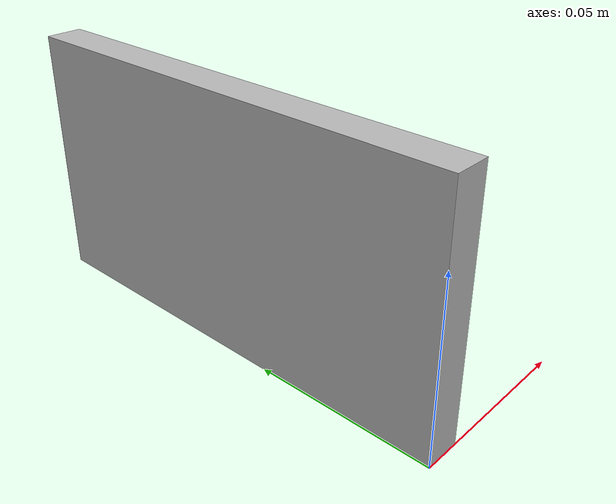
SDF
<?xml version="1.0" ?>
<sdf version="1.4">
  <model name="smartphone">
    <link name="link">
      <pose>0.005 0.065 0.035 0 0 0</pose>
      <inertial>
        <mass>0.2</mass>
      </inertial>
      <collision name="collision">
        <geometry>
          <box>
            <size>0.01 0.13 0.07</size>
          </box>
        </geometry>
      </collision>
      <visual name="visual">
        <geometry>
          <box>
            <size>0.01 0.13 0.07</size>
          </box>
        </geometry>
      </visual>
      <sensor name="camera" type="camera">
        <camera>
          <horizontal_fov>0.864</horizontal_fov>
          <image>
            <width>340</width>
            <height>200</height>
          </image>
          <clip>
            <near>0.1</near>
            <far>100</far>
          </clip>
        </camera>
        <plugin name="smartphone_camera_ros" filename="libgazebo_ros_camera.so">
          <alwaysOn>1</alwaysOn>
          <updateRate>1.0</updateRate>
          <cameraName>SmartphoneCamera</cameraName>
          <imageTopicName>/smartphone/camera/image</imageTopicName>
          <cameraInfoTopicName>/smartphone/camera/info</cameraInfoTopicName>
          <frameName>phone</frameName>
        </plugin>
        <always_on>1</always_on>
        <update_rate>1</update_rate>
        <visualize>true</visualize>
      </sensor>
    </link>
  </model>
</sdf>
